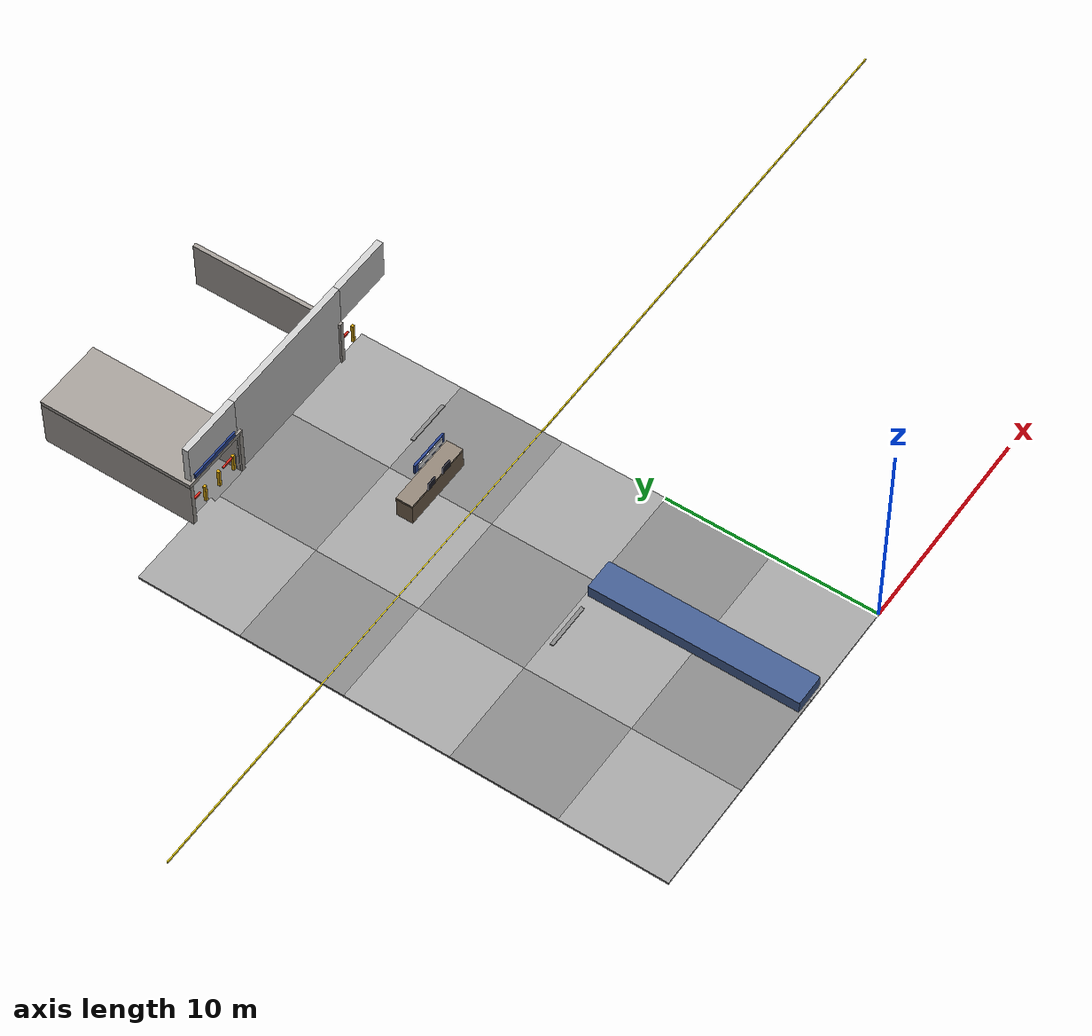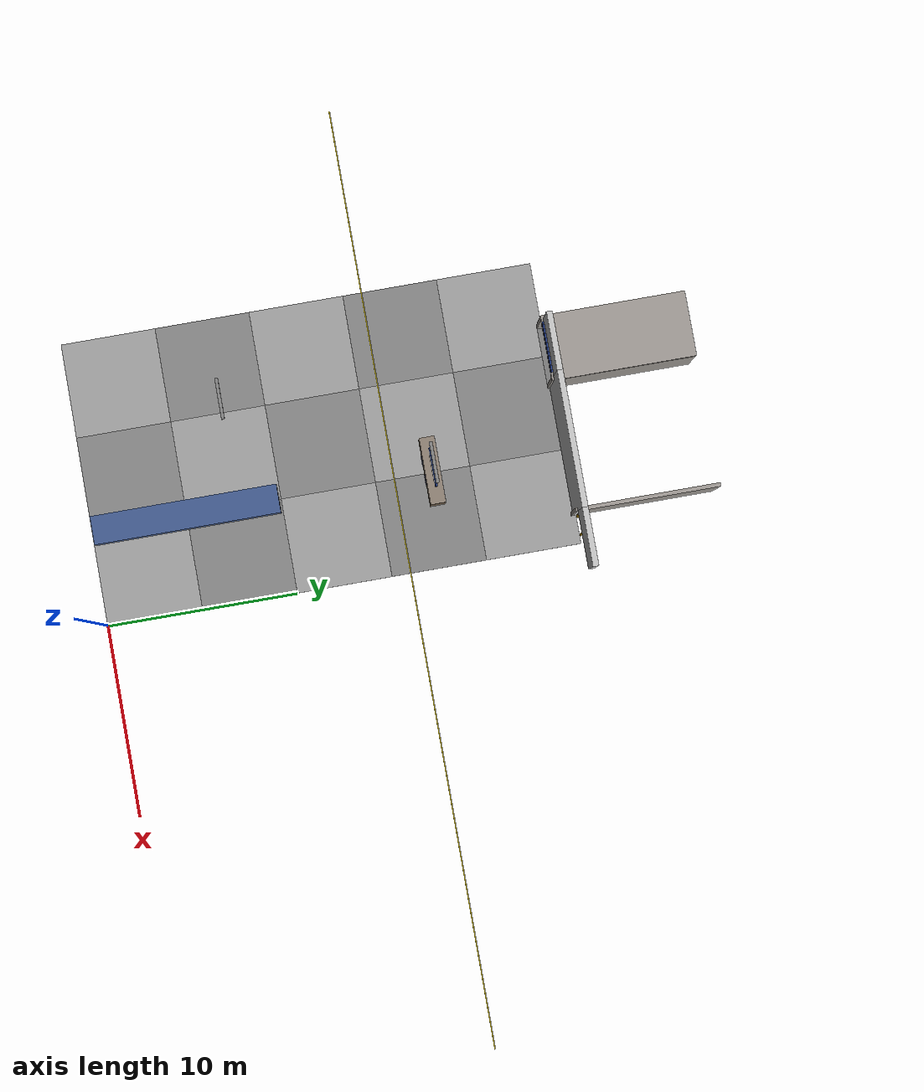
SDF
<sdf version="1.10">
 <world name="airport_terminal_world">
  <model name="gate_a2_queue_line1">
   <static>true</static>
   <pose>-5.0 14.0 0.06 0 0 0</pose>
   <link name="link">
    <visual name="vis">
     <geometry><box><size>4.0 0.05 0.01</size></box></geometry>
     <material><ambient>0.95 0.85 0.1 1.0</ambient><diffuse>0.95 0.85 0.1 1.0</diffuse></material>
    </visual>
   </link>
  </model>
  <model name="gate_a2_queue_line2">
   <static>true</static>
   <pose>-5.0 13.0 0.06 0 0 0</pose>
   <link name="link">
    <visual name="vis">
     <geometry><box><size>4.0 0.05 0.01</size></box></geometry>
     <material><ambient>0.95 0.85 0.1 1.0</ambient><diffuse>0.95 0.85 0.1 1.0</diffuse></material>
    </visual>
   </link>
  </model>
  <model name="gate_a2_queue_line3">
   <static>true</static>
   <pose>-5.0 12.0 0.06 0 0 0</pose>
   <link name="link">
    <visual name="vis">
     <geometry><box><size>4.0 0.05 0.01</size></box></geometry>
     <material><ambient>0.95 0.85 0.1 1.0</ambient><diffuse>0.95 0.85 0.1 1.0</diffuse></material>
    </visual>
   </link>
  </model>
  <model name="gate_a2_queue_side_l">
   <static>true</static>
   <pose>-7.0 13.0 0.06 0 0 0</pose>
   <link name="link">
    <visual name="vis">
     <geometry><box><size>0.05 2.0 0.01</size></box></geometry>
     <material><ambient>0.95 0.85 0.1 1.0</ambient><diffuse>0.95 0.85 0.1 1.0</diffuse></material>
    </visual>
   </link>
  </model>
  <model name="gate_a2_queue_side_r">
   <static>true</static>
   <pose>-3.0 13.0 0.06 0 0 0</pose>
   <link name="link">
    <visual name="vis">
     <geometry><box><size>0.05 2.0 0.01</size></box></geometry>
     <material><ambient>0.95 0.85 0.1 1.0</ambient><diffuse>0.95 0.85 0.1 1.0</diffuse></material>
    </visual>
   </link>
  </model>
  <model name="boundary_line">
   <static>true</static>
   <pose>0 16.0 0.06 0 0 0</pose>
   <link name="link">
    <visual name="vis">
     <geometry><box><size>49.7 0.05 0.1</size></box></geometry>
     <material><ambient>0.95 0.85 0.1 1.0</ambient><diffuse>0.95 0.85 0.1 1.0</diffuse></material>
    </visual>
   </link>
  </model>
  <model name="vtile_2_5">
   <static>true</static>
   <pose>-12.5 2.5 0.05 0 0 0</pose>
   <link name="link">
    <visual name="vis">
     <geometry><box><size>5.0 5.0 0.1</size></box></geometry>
     <material><ambient>0.62 0.62 0.62 1.0</ambient><diffuse>0.62 0.62 0.62 1.0</diffuse></material>
    </visual>
   </link>
  </model>
  <model name="vtile_2_6">
   <static>true</static>
   <pose>-12.5 7.5 0.05 0 0 0</pose>
   <link name="link">
    <visual name="vis">
     <geometry><box><size>5.0 5.0 0.1</size></box></geometry>
     <material><ambient>0.52 0.52 0.52 1.0</ambient><diffuse>0.52 0.52 0.52 1.0</diffuse></material>
    </visual>
   </link>
  </model>
  <model name="vtile_2_7">
   <static>true</static>
   <pose>-12.5 12.5 0.05 0 0 0</pose>
   <link name="link">
    <visual name="vis">
     <geometry><box><size>5.0 5.0 0.1</size></box></geometry>
     <material><ambient>0.62 0.62 0.62 1.0</ambient><diffuse>0.62 0.62 0.62 1.0</diffuse></material>
    </visual>
   </link>
  </model>
  <model name="vtile_2_8">
   <static>true</static>
   <pose>-12.5 17.5 0.05 0 0 0</pose>
   <link name="link">
    <visual name="vis">
     <geometry><box><size>5.0 5.0 0.1</size></box></geometry>
     <material><ambient>0.52 0.52 0.52 1.0</ambient><diffuse>0.52 0.52 0.52 1.0</diffuse></material>
    </visual>
   </link>
  </model>
  <model name="vtile_2_9">
   <static>true</static>
   <pose>-12.5 22.5 0.05 0 0 0</pose>
   <link name="link">
    <visual name="vis">
     <geometry><box><size>5.0 5.0 0.1</size></box></geometry>
     <material><ambient>0.62 0.62 0.62 1.0</ambient><diffuse>0.62 0.62 0.62 1.0</diffuse></material>
    </visual>
   </link>
  </model>
  <model name="vtile_3_5">
   <static>true</static>
   <pose>-7.5 2.5 0.05 0 0 0</pose>
   <link name="link">
    <visual name="vis">
     <geometry><box><size>5.0 5.0 0.1</size></box></geometry>
     <material><ambient>0.52 0.52 0.52 1.0</ambient><diffuse>0.52 0.52 0.52 1.0</diffuse></material>
    </visual>
   </link>
  </model>
  <model name="vtile_3_6">
   <static>true</static>
   <pose>-7.5 7.5 0.05 0 0 0</pose>
   <link name="link">
    <visual name="vis">
     <geometry><box><size>5.0 5.0 0.1</size></box></geometry>
     <material><ambient>0.62 0.62 0.62 1.0</ambient><diffuse>0.62 0.62 0.62 1.0</diffuse></material>
    </visual>
   </link>
  </model>
  <model name="vtile_3_7">
   <static>true</static>
   <pose>-7.5 12.5 0.05 0 0 0</pose>
   <link name="link">
    <visual name="vis">
     <geometry><box><size>5.0 5.0 0.1</size></box></geometry>
     <material><ambient>0.52 0.52 0.52 1.0</ambient><diffuse>0.52 0.52 0.52 1.0</diffuse></material>
    </visual>
   </link>
  </model>
  <model name="vtile_3_8">
   <static>true</static>
   <pose>-7.5 17.5 0.05 0 0 0</pose>
   <link name="link">
    <visual name="vis">
     <geometry><box><size>5.0 5.0 0.1</size></box></geometry>
     <material><ambient>0.62 0.62 0.62 1.0</ambient><diffuse>0.62 0.62 0.62 1.0</diffuse></material>
    </visual>
   </link>
  </model>
  <model name="vtile_3_9">
   <static>true</static>
   <pose>-7.5 22.5 0.05 0 0 0</pose>
   <link name="link">
    <visual name="vis">
     <geometry><box><size>5.0 5.0 0.1</size></box></geometry>
     <material><ambient>0.52 0.52 0.52 1.0</ambient><diffuse>0.52 0.52 0.52 1.0</diffuse></material>
    </visual>
   </link>
  </model>
  <model name="vtile_4_5">
   <static>true</static>
   <pose>-2.5 2.5 0.05 0 0 0</pose>
   <link name="link">
    <visual name="vis">
     <geometry><box><size>5.0 5.0 0.1</size></box></geometry>
     <material><ambient>0.62 0.62 0.62 1.0</ambient><diffuse>0.62 0.62 0.62 1.0</diffuse></material>
    </visual>
   </link>
  </model>
  <model name="vtile_4_6">
   <static>true</static>
   <pose>-2.5 7.5 0.05 0 0 0</pose>
   <link name="link">
    <visual name="vis">
     <geometry><box><size>5.0 5.0 0.1</size></box></geometry>
     <material><ambient>0.52 0.52 0.52 1.0</ambient><diffuse>0.52 0.52 0.52 1.0</diffuse></material>
    </visual>
   </link>
  </model>
  <model name="vtile_4_7">
   <static>true</static>
   <pose>-2.5 12.5 0.05 0 0 0</pose>
   <link name="link">
    <visual name="vis">
     <geometry><box><size>5.0 5.0 0.1</size></box></geometry>
     <material><ambient>0.62 0.62 0.62 1.0</ambient><diffuse>0.62 0.62 0.62 1.0</diffuse></material>
    </visual>
   </link>
  </model>
  <model name="vtile_4_8">
   <static>true</static>
   <pose>-2.5 17.5 0.05 0 0 0</pose>
   <link name="link">
    <visual name="vis">
     <geometry><box><size>5.0 5.0 0.1</size></box></geometry>
     <material><ambient>0.52 0.52 0.52 1.0</ambient><diffuse>0.52 0.52 0.52 1.0</diffuse></material>
    </visual>
   </link>
  </model>
  <model name="vtile_4_9">
   <static>true</static>
   <pose>-2.5 22.5 0.05 0 0 0</pose>
   <link name="link">
    <visual name="vis">
     <geometry><box><size>5.0 5.0 0.1</size></box></geometry>
     <material><ambient>0.62 0.62 0.62 1.0</ambient><diffuse>0.62 0.62 0.62 1.0</diffuse></material>
    </visual>
   </link>
  </model>
  <model name="wall_north_2">
   <static>true</static>
   <pose>-5.0 25.0 2.25 0 0 0</pose>
   <link name="link">
    <collision name="col"><geometry><box><size>7.0 0.3 4.5</size></box></geometry></collision>
    <visual name="vis">
     <geometry><box><size>7.0 0.3 4.5</size></box></geometry>
     <material><ambient>0.78 0.78 0.78 1.0</ambient><diffuse>0.78 0.78 0.78 1.0</diffuse></material>
    </visual>
   </link>
  </model>
  <model name="wall_north_top_-10">
   <static>true</static>
   <pose>-10.0 25.0 3.5 0 0 0</pose>
   <link name="link">
    <collision name="col"><geometry><box><size>3.0 0.3 2.0</size></box></geometry></collision>
    <visual name="vis">
     <geometry><box><size>3.0 0.3 2.0</size></box></geometry>
     <material><ambient>0.78 0.78 0.78 1.0</ambient><diffuse>0.78 0.78 0.78 1.0</diffuse></material>
    </visual>
   </link>
  </model>
  <model name="wall_north_top_0">
   <static>true</static>
   <pose>0 25.0 3.5 0 0 0</pose>
   <link name="link">
    <collision name="col"><geometry><box><size>3.0 0.3 2.0</size></box></geometry></collision>
    <visual name="vis">
     <geometry><box><size>3.0 0.3 2.0</size></box></geometry>
     <material><ambient>0.78 0.78 0.78 1.0</ambient><diffuse>0.78 0.78 0.78 1.0</diffuse></material>
    </visual>
   </link>
  </model>
  <model name="lamp_c_n10_strip">
   <static>true</static>
   <pose>-10.0 8.0 4.42 0 0 0</pose>
   <link name="link">
    <visual name="strip">
     <geometry><box><size>2.0 0.12 0.04</size></box></geometry>
     <material>
      <ambient>0.95 0.95 0.88 1.0</ambient>
      <diffuse>0.95 0.95 0.88 1.0</diffuse>
      <emissive>0.35 0.35 0.3 1.0</emissive>
     </material>
    </visual>
    <visual name="housing">
     <pose>0 0 0.03 0 0 0</pose>
     <geometry><box><size>2.1 0.16 0.06</size></box></geometry>
     <material><ambient>0.5 0.5 0.5 1.0</ambient><diffuse>0.5 0.5 0.5 1.0</diffuse></material>
    </visual>
   </link>
  </model>
  <model name="lamp_gate_a2_strip">
   <static>true</static>
   <pose>-5.0 18.0 4.42 0 0 0</pose>
   <link name="link">
    <visual name="strip">
     <geometry><box><size>2.0 0.12 0.04</size></box></geometry>
     <material>
      <ambient>0.95 0.95 0.88 1.0</ambient>
      <diffuse>0.95 0.95 0.88 1.0</diffuse>
      <emissive>0.35 0.35 0.3 1.0</emissive>
     </material>
    </visual>
    <visual name="housing">
     <pose>0 0 0.03 0 0 0</pose>
     <geometry><box><size>2.1 0.16 0.06</size></box></geometry>
     <material><ambient>0.5 0.5 0.5 1.0</ambient><diffuse>0.5 0.5 0.5 1.0</diffuse></material>
    </visual>
   </link>
  </model>
  <model name="gate_a2_counter">
   <static>true</static>
   <pose>-5.0 18.0 0.55 0 0 0</pose>
   <link name="link">
    <collision name="col"><geometry><box><size>3.5 0.8 1.1</size></box></geometry></collision>
    <visual name="vis">
     <geometry><box><size>3.5 0.8 1.1</size></box></geometry>
     <material><ambient>0.45 0.38 0.3 1.0</ambient><diffuse>0.45 0.38 0.3 1.0</diffuse></material>
    </visual>
   </link>
  </model>
  <model name="gate_a2_counter_top">
   <static>true</static>
   <pose>-5.0 18.0 1.15 0 0 0</pose>
   <link name="link">
    <collision name="col"><geometry><box><size>3.5 0.8 0.08</size></box></geometry></collision>
    <visual name="vis">
     <geometry><box><size>3.5 0.8 0.08</size></box></geometry>
     <material><ambient>0.55 0.5 0.45 1.0</ambient><diffuse>0.55 0.5 0.45 1.0</diffuse></material>
    </visual>
   </link>
  </model>
  <model name="gate_a2_monitor">
   <static>true</static>
   <pose>-5.5 17.55 1.4 0 0 0</pose>
   <link name="link">
    <visual name="vis">
     <geometry><box><size>0.5 0.05 0.4</size></box></geometry>
     <material><ambient>0.1 0.1 0.15 1.0</ambient><diffuse>0.1 0.1 0.15 1.0</diffuse></material>
    </visual>
   </link>
  </model>
  <model name="gate_a2_monitor2">
   <static>true</static>
   <pose>-4.5 17.55 1.4 0 0 0</pose>
   <link name="link">
    <visual name="vis">
     <geometry><box><size>0.5 0.05 0.4</size></box></geometry>
     <material><ambient>0.1 0.1 0.15 1.0</ambient><diffuse>0.1 0.1 0.15 1.0</diffuse></material>
    </visual>
   </link>
  </model>
  <model name="gate_a2_sign">
   <static>true</static>
   <pose>-5.0 18.0 2.5 0 0 0</pose>
   <link name="link">
    <visual name="vis">
     <geometry><box><size>2.0 0.1 0.5</size></box></geometry>
     <material><ambient>0.15 0.25 0.55 1.0</ambient><diffuse>0.15 0.25 0.55 1.0</diffuse></material>
    </visual>
   </link>
  </model>
  <model name="gate_a2_sign_text">
   <static>true</static>
   <pose>-5.0 17.94 2.5 0 0 0</pose>
   <link name="link">
    <visual name="vis">
     <geometry><box><size>1.6 0.05 0.3</size></box></geometry>
     <material><ambient>0.9 0.9 0.9 1.0</ambient><diffuse>0.9 0.9 0.9 1.0</diffuse></material>
    </visual>
   </link>
  </model>
  <model name="tunnel_a1_wall_l">
   <static>true</static>
   <pose>-11.6 28.5 1.3 0 0 0</pose>
   <link name="link">
    <collision name="col"><geometry><box><size>0.2 7.5 2.4</size></box></geometry></collision>
    <visual name="vis">
     <geometry><box><size>0.2 7.5 2.4</size></box></geometry>
     <material><ambient>0.62 0.6 0.58 1.0</ambient><diffuse>0.62 0.6 0.58 1.0</diffuse></material>
    </visual>
   </link>
  </model>
  <model name="tunnel_a1_wall_r">
   <static>true</static>
   <pose>-8.4 28.5 1.3 0 0 0</pose>
   <link name="link">
    <collision name="col"><geometry><box><size>0.2 7.5 2.4</size></box></geometry></collision>
    <visual name="vis">
     <geometry><box><size>0.2 7.5 2.4</size></box></geometry>
     <material><ambient>0.62 0.6 0.58 1.0</ambient><diffuse>0.62 0.6 0.58 1.0</diffuse></material>
    </visual>
   </link>
  </model>
  <model name="tunnel_a1_roof">
   <static>true</static>
   <pose>-10.0 28.5 2.5 0 0 0</pose>
   <link name="link">
    <collision name="col"><geometry><box><size>3.4 7.5 0.2</size></box></geometry></collision>
    <visual name="vis">
     <geometry><box><size>3.4 7.5 0.2</size></box></geometry>
     <material><ambient>0.62 0.6 0.58 1.0</ambient><diffuse>0.62 0.6 0.58 1.0</diffuse></material>
    </visual>
   </link>
  </model>
  <model name="tunnel_a1_floor">
   <static>true</static>
   <pose>-10 28.5 0.05 0 0 0</pose>
   <link name="link">
    <collision name="col"><geometry><box><size>3.0 7.5 0.1</size></box></geometry></collision>
    <visual name="vis">
     <geometry><box><size>3.0 7.5 0.1</size></box></geometry>
     <material><ambient>0.48 0.48 0.48 1</ambient><diffuse>0.48 0.48 0.48 1</diffuse></material>
    </visual>
   </link>
  </model>
  <model name="tunnel_a1_sign">
   <static>true</static>
   <pose>-10.0 24.8 2.7 0 0 0</pose>
   <link name="link">
    <visual name="vis">
     <geometry><box><size>2.6 0.08 0.35</size></box></geometry>
     <material><ambient>0.15 0.25 0.55 1.0</ambient><diffuse>0.15 0.25 0.55 1.0</diffuse></material>
    </visual>
   </link>
  </model>
  <model name="tunnel_a2_wall_l">
   <static>true</static>
   <pose>-1.6 28.5 1.3 0 0 0</pose>
   <link name="link">
    <collision name="col"><geometry><box><size>0.2 7.5 2.4</size></box></geometry></collision>
    <visual name="vis">
     <geometry><box><size>0.2 7.5 2.4</size></box></geometry>
     <material><ambient>0.62 0.6 0.58 1.0</ambient><diffuse>0.62 0.6 0.58 1.0</diffuse></material>
    </visual>
   </link>
  </model>
  <model name="barrier_a1_post_l">
   <static>true</static>
   <pose>-11.4 25.1 0.5 0 0 0</pose>
   <link name="link">
    <collision name="col"><geometry><box><size>0.12 0.12 1.0</size></box></geometry></collision>
    <visual name="vis">
     <geometry><box><size>0.12 0.12 1.0</size></box></geometry>
     <material><ambient>0.85 0.65 0.05 1.0</ambient><diffuse>0.85 0.65 0.05 1.0</diffuse></material>
    </visual>
   </link>
  </model>
  <model name="barrier_a1_arm_l">
   <static>true</static>
   <pose>-11.05 25.1 0.9 0 0 0</pose>
   <link name="link">
    <collision name="col"><geometry><box><size>0.6 0.08 0.08</size></box></geometry></collision>
    <visual name="vis">
     <geometry><box><size>0.6 0.08 0.08</size></box></geometry>
     <material><ambient>0.85 0.15 0.1 1.0</ambient><diffuse>0.85 0.15 0.1 1.0</diffuse></material>
    </visual>
   </link>
  </model>
  <model name="barrier_a1_post_ml">
   <static>true</static>
   <pose>-10.45 25.1 0.5 0 0 0</pose>
   <link name="link">
    <collision name="col"><geometry><box><size>0.12 0.12 1.0</size></box></geometry></collision>
    <visual name="vis">
     <geometry><box><size>0.12 0.12 1.0</size></box></geometry>
     <material><ambient>0.85 0.65 0.05 1.0</ambient><diffuse>0.85 0.65 0.05 1.0</diffuse></material>
    </visual>
   </link>
  </model>
  <model name="barrier_a1_post_mr">
   <static>true</static>
   <pose>-9.55 25.1 0.5 0 0 0</pose>
   <link name="link">
    <collision name="col"><geometry><box><size>0.12 0.12 1.0</size></box></geometry></collision>
    <visual name="vis">
     <geometry><box><size>0.12 0.12 1.0</size></box></geometry>
     <material><ambient>0.85 0.65 0.05 1.0</ambient><diffuse>0.85 0.65 0.05 1.0</diffuse></material>
    </visual>
   </link>
  </model>
  <model name="barrier_a1_arm_r">
   <static>true</static>
   <pose>-8.95 25.1 0.9 0 0 0</pose>
   <link name="link">
    <collision name="col"><geometry><box><size>0.6 0.08 0.08</size></box></geometry></collision>
    <visual name="vis">
     <geometry><box><size>0.6 0.08 0.08</size></box></geometry>
     <material><ambient>0.85 0.15 0.1 1.0</ambient><diffuse>0.85 0.15 0.1 1.0</diffuse></material>
    </visual>
   </link>
  </model>
  <model name="barrier_a1_post_r">
   <static>true</static>
   <pose>-8.6 25.1 0.5 0 0 0</pose>
   <link name="link">
    <collision name="col"><geometry><box><size>0.12 0.12 1.0</size></box></geometry></collision>
    <visual name="vis">
     <geometry><box><size>0.12 0.12 1.0</size></box></geometry>
     <material><ambient>0.85 0.65 0.05 1.0</ambient><diffuse>0.85 0.65 0.05 1.0</diffuse></material>
    </visual>
   </link>
  </model>
  <model name="barrier_a1_fill_l">
   <static>true</static>
   <pose>-11.5 25.1 0.5 0 0 0</pose>
   <link name="link">
    <collision name="col"><geometry><box><size>0.08 0.12 1.0</size></box></geometry></collision>
    <visual name="vis">
     <geometry><box><size>0.08 0.12 1.0</size></box></geometry>
     <material><ambient>0.6 0.6 0.6 1.0</ambient><diffuse>0.6 0.6 0.6 1.0</diffuse></material>
    </visual>
   </link>
  </model>
  <model name="barrier_a1_fill_r">
   <static>true</static>
   <pose>-8.5 25.1 0.5 0 0 0</pose>
   <link name="link">
    <collision name="col"><geometry><box><size>0.08 0.12 1.0</size></box></geometry></collision>
    <visual name="vis">
     <geometry><box><size>0.08 0.12 1.0</size></box></geometry>
     <material><ambient>0.6 0.6 0.6 1.0</ambient><diffuse>0.6 0.6 0.6 1.0</diffuse></material>
    </visual>
   </link>
  </model>
  <model name="barrier_a2_post_l">
   <static>true</static>
   <pose>-1.4 25.1 0.5 0 0 0</pose>
   <link name="link">
    <collision name="col"><geometry><box><size>0.12 0.12 1.0</size></box></geometry></collision>
    <visual name="vis">
     <geometry><box><size>0.12 0.12 1.0</size></box></geometry>
     <material><ambient>0.85 0.65 0.05 1.0</ambient><diffuse>0.85 0.65 0.05 1.0</diffuse></material>
    </visual>
   </link>
  </model>
  <model name="barrier_a2_arm_l">
   <static>true</static>
   <pose>-1.05 25.1 0.9 0 0 0</pose>
   <link name="link">
    <collision name="col"><geometry><box><size>0.6 0.08 0.08</size></box></geometry></collision>
    <visual name="vis">
     <geometry><box><size>0.6 0.08 0.08</size></box></geometry>
     <material><ambient>0.85 0.15 0.1 1.0</ambient><diffuse>0.85 0.15 0.1 1.0</diffuse></material>
    </visual>
   </link>
  </model>
  <model name="barrier_a2_post_ml">
   <static>true</static>
   <pose>-0.45 25.1 0.5 0 0 0</pose>
   <link name="link">
    <collision name="col"><geometry><box><size>0.12 0.12 1.0</size></box></geometry></collision>
    <visual name="vis">
     <geometry><box><size>0.12 0.12 1.0</size></box></geometry>
     <material><ambient>0.85 0.65 0.05 1.0</ambient><diffuse>0.85 0.65 0.05 1.0</diffuse></material>
    </visual>
   </link>
  </model>
  <model name="barrier_a2_fill_l">
   <static>true</static>
   <pose>-1.5 25.1 0.5 0 0 0</pose>
   <link name="link">
    <collision name="col"><geometry><box><size>0.08 0.12 1.0</size></box></geometry></collision>
    <visual name="vis">
     <geometry><box><size>0.08 0.12 1.0</size></box></geometry>
     <material><ambient>0.6 0.6 0.6 1.0</ambient><diffuse>0.6 0.6 0.6 1.0</diffuse></material>
    </visual>
   </link>
  </model>
  <model name="cluster_5_bench">
   <static>true</static>
   <pose>-5.0 5.0 0.35 0.0 0.0 0.0</pose>
   <link name="link">
    <collision name="col"><geometry><box><size>1.5 9.8 0.7</size></box></geometry></collision>
    <visual name="vis">
     <geometry><box><size>1.5 9.8 0.7</size></box></geometry>
     <material><ambient>0.25 0.35 0.55 1.0</ambient><diffuse>0.25 0.35 0.55 1.0</diffuse></material>
    </visual>
   </link>
  </model>
 </world>
</sdf>
